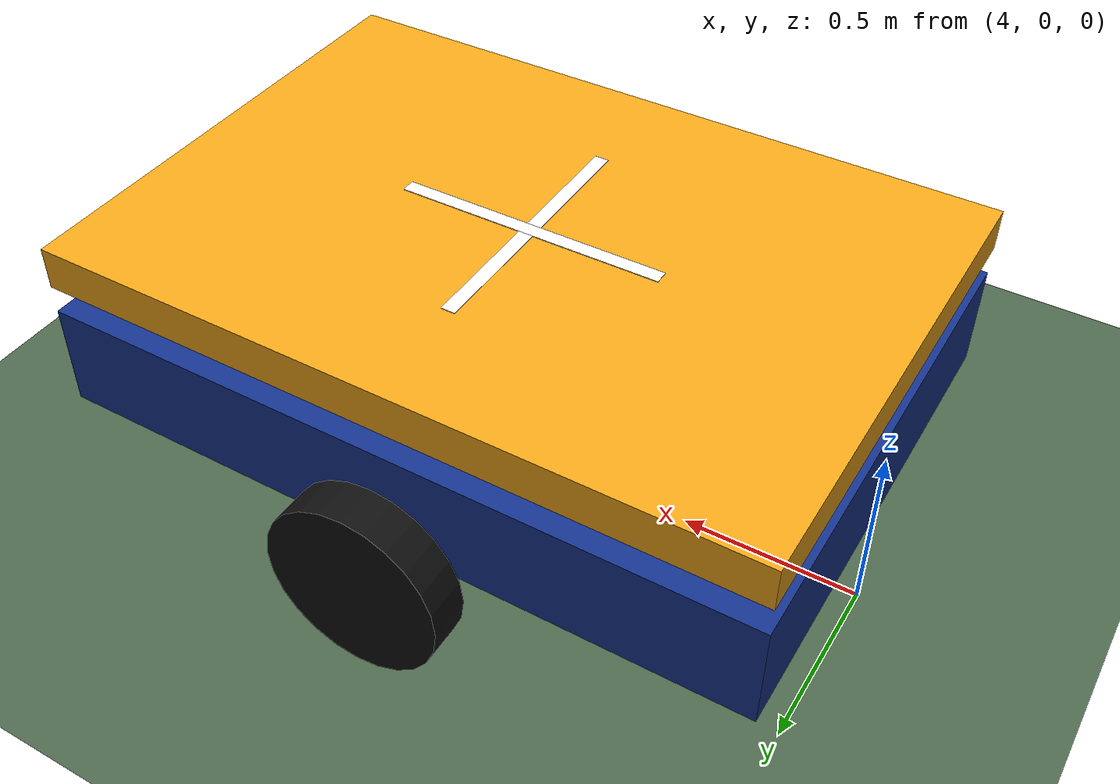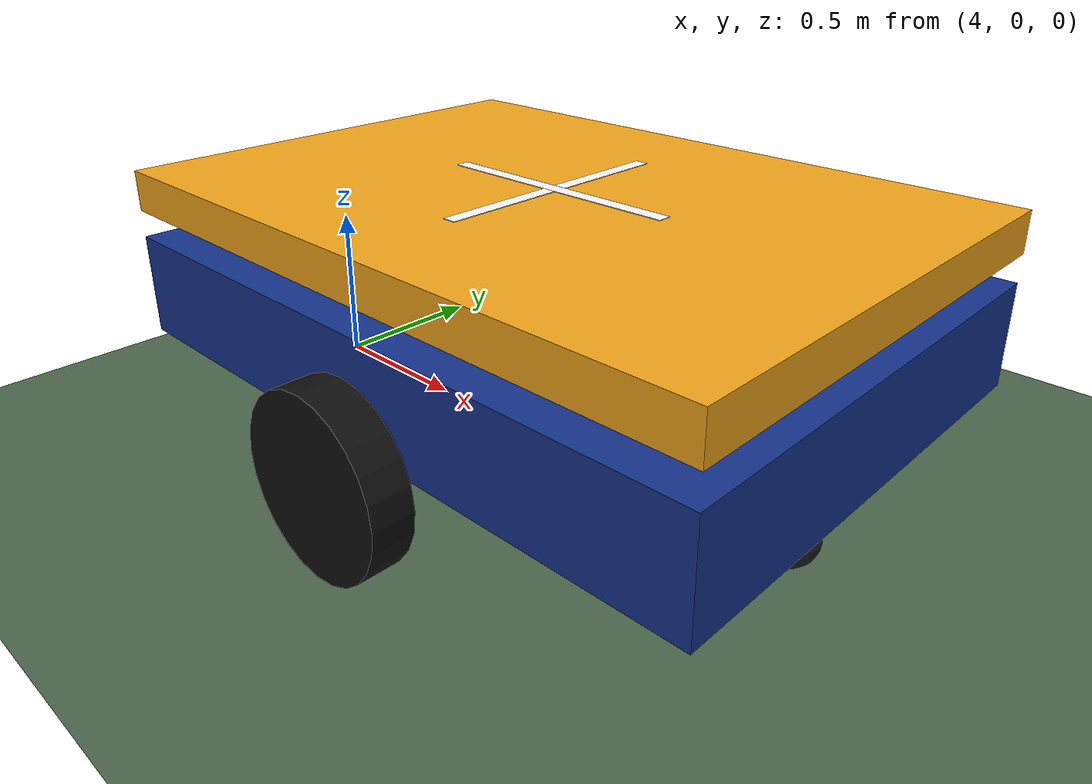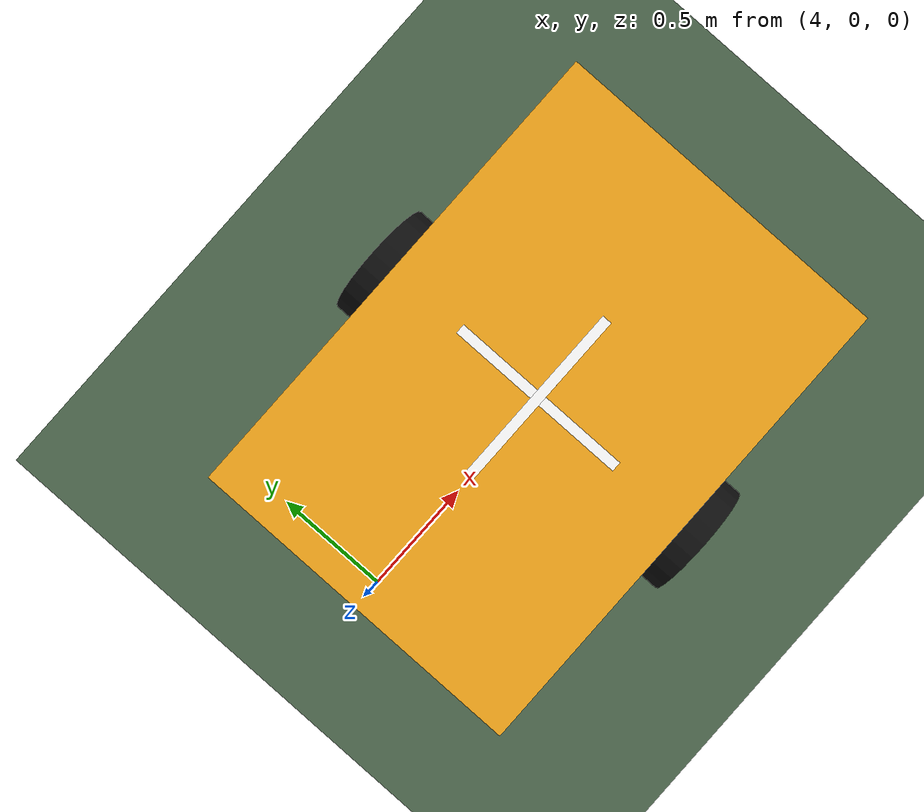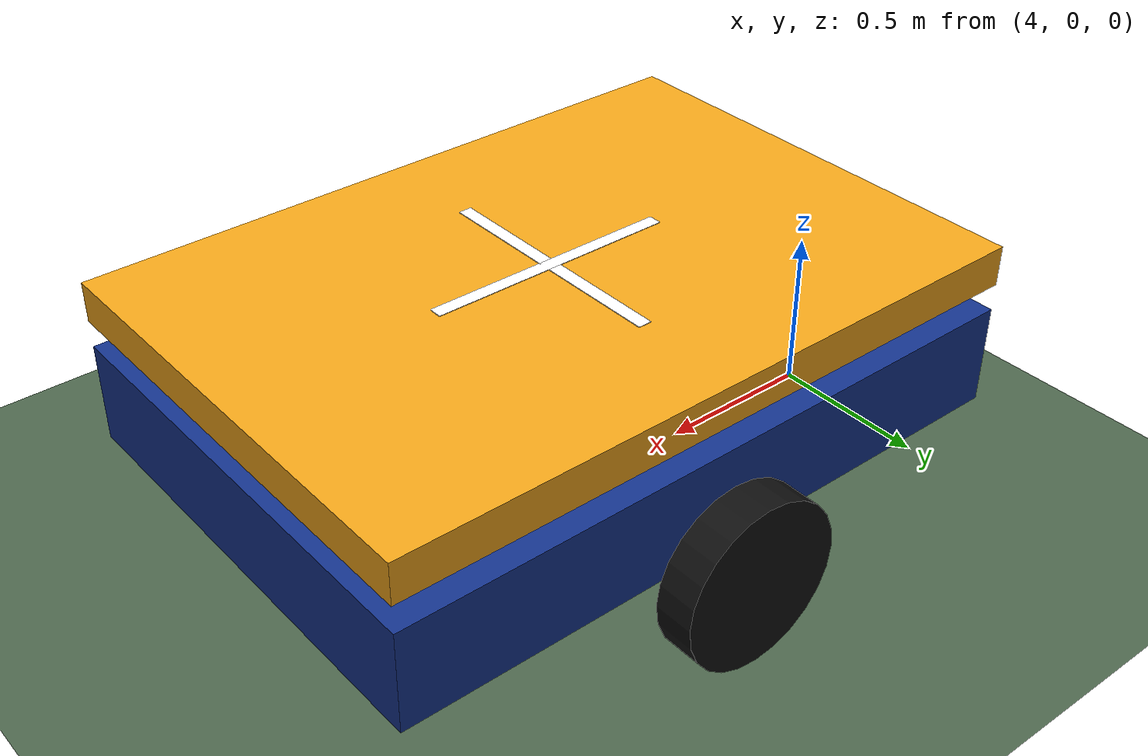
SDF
<sdf version="1.6">
 <world name="layout_preview_only">
  <physics name="1ms" type="ode">
   <max_step_size>0.001</max_step_size>
   <real_time_factor>1</real_time_factor>
  </physics>
  <scene><ambient>0.7 0.7 0.7</ambient><background>0.75 0.85 0.95</background></scene>
  <spherical_coordinates>
   <latitude_deg>-35.363262</latitude_deg>
   <longitude_deg>149.165237</longitude_deg>
   <elevation>584</elevation>
   <heading_deg>0</heading_deg>
   <surface_model>EARTH_WGS84</surface_model>
  </spherical_coordinates>
  <light name="sun" type="directional">
   <pose>0 0 10 0 0 0</pose>
   <diffuse>0.9 0.9 0.9 1</diffuse>
   <direction>-0.5 0.1 -0.9</direction>
  </light>
  <model name="ground">
   <static>true</static>
   <link name="ground_link">
    <collision name="ground">
     <geometry><plane><normal>0 0 1</normal><size>200 200</size></plane></geometry>
     <surface><friction><ode><mu>1</mu><mu2>1</mu2></ode></friction></surface>
    </collision>
    <visual name="ground">
     <geometry><plane><normal>0 0 1</normal><size>200 200</size></plane></geometry>
     <material><ambient>0.3 0.4 0.3 1</ambient><diffuse>0.3 0.4 0.3 1</diffuse></material>
    </visual>
   </link>
  </model>
  <model name="landing_vehicle">
   <static>true</static>
   <link name="chassis">
    <pose>0 0 0.45 0 0 0</pose>
    <inertial>
     <mass>50</mass>
     <inertia><ixx>9</ixx><iyy>19</iyy><izz>25</izz><ixy>0</ixy><ixz>0</ixz><iyz>0</iyz></inertia>
    </inertial>
    <collision name="body">
     <geometry><box><size>2 1.4 0.3</size></box></geometry>
     <surface><friction><ode><mu>1</mu><mu2>1</mu2></ode></friction></surface>
    </collision>
    <visual name="body">
     <geometry><box><size>2 1.4 0.3</size></box></geometry>
     <material><ambient>0.08 0.2 0.55 1</ambient><diffuse>0.08 0.2 0.55 1</diffuse></material>
    </visual>
    <collision name="landing_deck">
     <pose>0 0 0.29 0 0 0</pose>
     <geometry><box><size>2 1.4 0.12</size></box></geometry>
     <surface><friction><ode><mu>1</mu><mu2>1</mu2></ode></friction></surface>
    </collision>
    <visual name="landing_deck">
     <pose>0 0 0.29 0 0 0</pose>
     <geometry><box><size>2 1.4 0.12</size></box></geometry>
     <material><ambient>0.95 0.65 0.1 1</ambient><diffuse>0.95 0.65 0.1 1</diffuse></material>
    </visual>
    <visual name="mark_x">
     <pose>0 0 0.351 0 0 0</pose>
     <geometry><box><size>0.75 0.04 0.002</size></box></geometry>
     <material><diffuse>1 1 1 1</diffuse><ambient>1 1 1 1</ambient></material>
    </visual>
    <visual name="mark_y">
     <pose>0 0 0.351 0 0 0</pose>
     <geometry><box><size>0.04 0.75 0.002</size></box></geometry>
     <material><diffuse>1 1 1 1</diffuse><ambient>1 1 1 1</ambient></material>
    </visual>
   </link>
   <link name="left_wheel">
    <pose>0 0.78 0.25 0 0 0</pose>
    <inertial>
     <mass>2</mass>
     <inertia><ixx>0.035</ixx><iyy>0.0625</iyy><izz>0.035</izz><ixy>0</ixy><ixz>0</ixz><iyz>0</iyz></inertia>
    </inertial>
    <collision name="wheel">
     <pose>0 0 0 1.57079632679 0 0</pose>
     <geometry><cylinder><radius>0.25</radius><length>0.12</length></cylinder></geometry>
     <surface><friction><ode><mu>1</mu><mu2>1</mu2></ode></friction></surface>
    </collision>
    <visual name="wheel">
     <pose>0 0 0 1.57079632679 0 0</pose>
     <geometry><cylinder><radius>0.25</radius><length>0.12</length></cylinder></geometry>
     <material><ambient>0.06 0.06 0.06 1</ambient><diffuse>0.06 0.06 0.06 1</diffuse></material>
    </visual>
   </link>
   <joint name="left_wheel_joint" type="revolute">
    <parent>chassis</parent>
    <child>left_wheel</child>
    <axis><xyz>0 1 0</xyz><limit><lower>-1e+16</lower><upper>1e+16</upper></limit></axis>
   </joint>
   <link name="right_wheel">
    <pose>0 -0.78 0.25 0 0 0</pose>
    <inertial>
     <mass>2</mass>
     <inertia><ixx>0.035</ixx><iyy>0.0625</iyy><izz>0.035</izz><ixy>0</ixy><ixz>0</ixz><iyz>0</iyz></inertia>
    </inertial>
    <collision name="wheel">
     <pose>0 0 0 1.57079632679 0 0</pose>
     <geometry><cylinder><radius>0.25</radius><length>0.12</length></cylinder></geometry>
     <surface><friction><ode><mu>1</mu><mu2>1</mu2></ode></friction></surface>
    </collision>
    <visual name="wheel">
     <pose>0 0 0 1.57079632679 0 0</pose>
     <geometry><cylinder><radius>0.25</radius><length>0.12</length></cylinder></geometry>
     <material><ambient>0.06 0.06 0.06 1</ambient><diffuse>0.06 0.06 0.06 1</diffuse></material>
    </visual>
   </link>
   <joint name="right_wheel_joint" type="revolute">
    <parent>chassis</parent>
    <child>right_wheel</child>
    <axis><xyz>0 1 0</xyz><limit><lower>-1e+16</lower><upper>1e+16</upper></limit></axis>
   </joint>
   <link name="front_caster">
    <pose>0.8 0 0.08 0 0 0</pose>
    <inertial>
     <mass>0.2</mass>
     <inertia><ixx>0.001</ixx><iyy>0.001</iyy><izz>0.001</izz><ixy>0</ixy><ixz>0</ixz><iyz>0</iyz></inertia>
    </inertial>
    <collision name="caster">
     <geometry><sphere><radius>0.08</radius></sphere></geometry>
     <surface><friction><ode><mu>0.001</mu><mu2>0.001</mu2></ode></friction></surface>
    </collision>
    <visual name="caster">
     <geometry><sphere><radius>0.08</radius></sphere></geometry>
     <material><ambient>0.1 0.1 0.1 1</ambient><diffuse>0.1 0.1 0.1 1</diffuse></material>
    </visual>
   </link>
   <joint name="front_caster_joint" type="fixed"><parent>chassis</parent><child>front_caster</child></joint>
   <link name="rear_caster">
    <pose>-0.8 0 0.08 0 0 0</pose>
    <inertial>
     <mass>0.2</mass>
     <inertia><ixx>0.001</ixx><iyy>0.001</iyy><izz>0.001</izz><ixy>0</ixy><ixz>0</ixz><iyz>0</iyz></inertia>
    </inertial>
    <collision name="caster">
     <geometry><sphere><radius>0.08</radius></sphere></geometry>
     <surface><friction><ode><mu>0.001</mu><mu2>0.001</mu2></ode></friction></surface>
    </collision>
    <visual name="caster">
     <geometry><sphere><radius>0.08</radius></sphere></geometry>
     <material><ambient>0.1 0.1 0.1 1</ambient><diffuse>0.1 0.1 0.1 1</diffuse></material>
    </visual>
   </link>
   <joint name="rear_caster_joint" type="fixed"><parent>chassis</parent><child>rear_caster</child></joint>
   <pose>5 0 0.002 0 0 0</pose>
  </model>
 </world>
</sdf>
